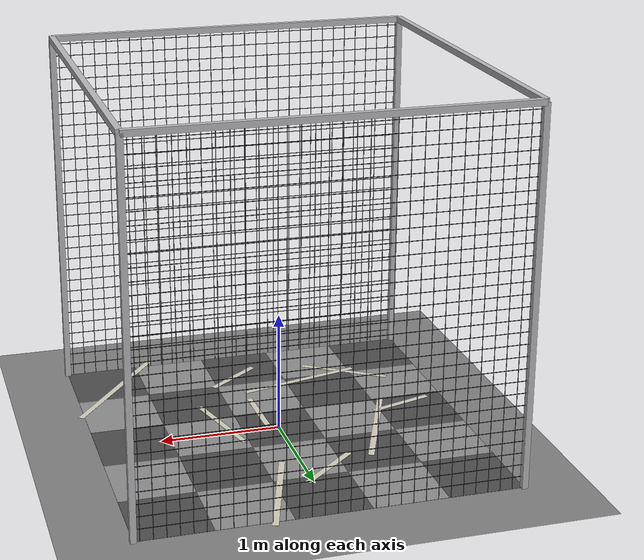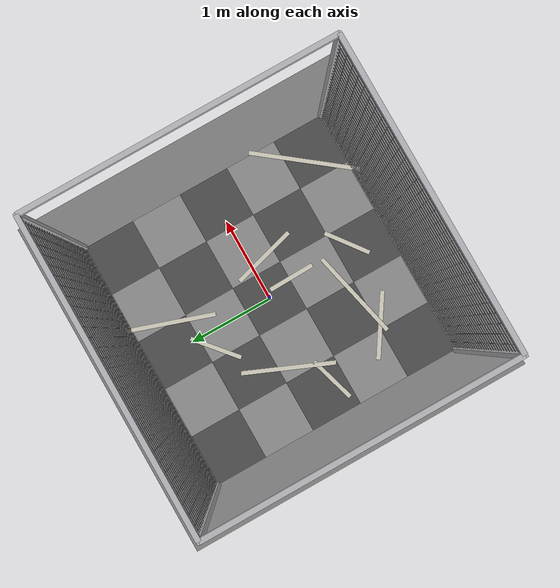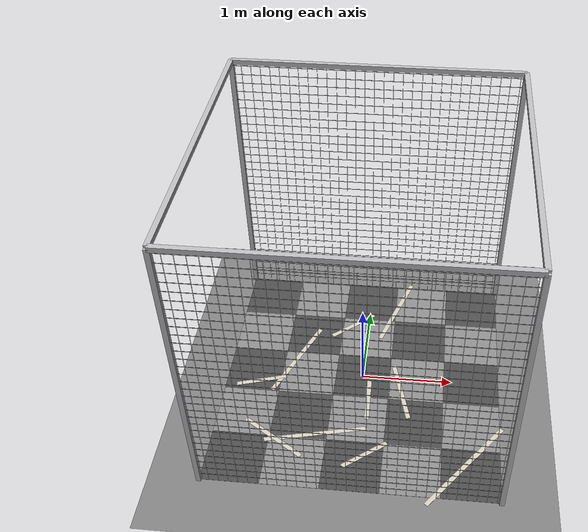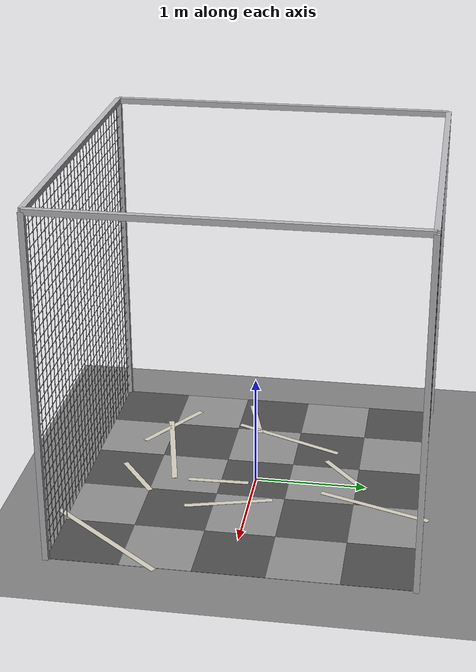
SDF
<sdf version="1.9">
 <world name="ecps295_cage10_monitor">
  <model name="ground_plane">
   <static>true</static>
   <link name="link">
    <collision name="collision">
     <geometry><plane><normal>0 0 1</normal><size>50 50</size></plane></geometry>
    </collision>
    <visual name="visual">
     <geometry><plane><normal>0 0 1</normal><size>50 50</size></plane></geometry>
     <material><ambient>0.5 0.5 0.5 1</ambient><diffuse>0.5 0.5 0.5 1</diffuse></material>
    </visual>
   </link>
  </model>
  <model name="eva_mat">
   <static>true</static>
   <link name="link">
    <visual name="t0_0">
     <pose>-1.220 -1.220 0.001 0 0 0</pose>
     <geometry><box><size>0.61 0.61 0.002</size></box></geometry>
     <material><ambient>0.3 0.3 0.3 1</ambient><diffuse>0.3 0.3 0.3 1</diffuse></material>
    </visual>
    <visual name="t0_1">
     <pose>-1.220 -0.610 0.001 0 0 0</pose>
     <geometry><box><size>0.61 0.61 0.002</size></box></geometry>
     <material><ambient>0.55 0.55 0.55 1</ambient><diffuse>0.55 0.55 0.55 1</diffuse></material>
    </visual>
    <visual name="t0_2">
     <pose>-1.220 0.000 0.001 0 0 0</pose>
     <geometry><box><size>0.61 0.61 0.002</size></box></geometry>
     <material><ambient>0.3 0.3 0.3 1</ambient><diffuse>0.3 0.3 0.3 1</diffuse></material>
    </visual>
    <visual name="t0_3">
     <pose>-1.220 0.610 0.001 0 0 0</pose>
     <geometry><box><size>0.61 0.61 0.002</size></box></geometry>
     <material><ambient>0.55 0.55 0.55 1</ambient><diffuse>0.55 0.55 0.55 1</diffuse></material>
    </visual>
    <visual name="t0_4">
     <pose>-1.220 1.220 0.001 0 0 0</pose>
     <geometry><box><size>0.61 0.61 0.002</size></box></geometry>
     <material><ambient>0.3 0.3 0.3 1</ambient><diffuse>0.3 0.3 0.3 1</diffuse></material>
    </visual>
    <visual name="t1_0">
     <pose>-0.610 -1.220 0.001 0 0 0</pose>
     <geometry><box><size>0.61 0.61 0.002</size></box></geometry>
     <material><ambient>0.55 0.55 0.55 1</ambient><diffuse>0.55 0.55 0.55 1</diffuse></material>
    </visual>
    <visual name="t1_1">
     <pose>-0.610 -0.610 0.001 0 0 0</pose>
     <geometry><box><size>0.61 0.61 0.002</size></box></geometry>
     <material><ambient>0.3 0.3 0.3 1</ambient><diffuse>0.3 0.3 0.3 1</diffuse></material>
    </visual>
    <visual name="t1_2">
     <pose>-0.610 0.000 0.001 0 0 0</pose>
     <geometry><box><size>0.61 0.61 0.002</size></box></geometry>
     <material><ambient>0.55 0.55 0.55 1</ambient><diffuse>0.55 0.55 0.55 1</diffuse></material>
    </visual>
    <visual name="t1_3">
     <pose>-0.610 0.610 0.001 0 0 0</pose>
     <geometry><box><size>0.61 0.61 0.002</size></box></geometry>
     <material><ambient>0.3 0.3 0.3 1</ambient><diffuse>0.3 0.3 0.3 1</diffuse></material>
    </visual>
    <visual name="t1_4">
     <pose>-0.610 1.220 0.001 0 0 0</pose>
     <geometry><box><size>0.61 0.61 0.002</size></box></geometry>
     <material><ambient>0.55 0.55 0.55 1</ambient><diffuse>0.55 0.55 0.55 1</diffuse></material>
    </visual>
    <visual name="t2_0">
     <pose>0.000 -1.220 0.001 0 0 0</pose>
     <geometry><box><size>0.61 0.61 0.002</size></box></geometry>
     <material><ambient>0.3 0.3 0.3 1</ambient><diffuse>0.3 0.3 0.3 1</diffuse></material>
    </visual>
    <visual name="t2_1">
     <pose>0.000 -0.610 0.001 0 0 0</pose>
     <geometry><box><size>0.61 0.61 0.002</size></box></geometry>
     <material><ambient>0.55 0.55 0.55 1</ambient><diffuse>0.55 0.55 0.55 1</diffuse></material>
    </visual>
    <visual name="t2_2">
     <pose>0.000 0.000 0.001 0 0 0</pose>
     <geometry><box><size>0.61 0.61 0.002</size></box></geometry>
     <material><ambient>0.3 0.3 0.3 1</ambient><diffuse>0.3 0.3 0.3 1</diffuse></material>
    </visual>
    <visual name="t2_3">
     <pose>0.000 0.610 0.001 0 0 0</pose>
     <geometry><box><size>0.61 0.61 0.002</size></box></geometry>
     <material><ambient>0.55 0.55 0.55 1</ambient><diffuse>0.55 0.55 0.55 1</diffuse></material>
    </visual>
    <visual name="t2_4">
     <pose>0.000 1.220 0.001 0 0 0</pose>
     <geometry><box><size>0.61 0.61 0.002</size></box></geometry>
     <material><ambient>0.3 0.3 0.3 1</ambient><diffuse>0.3 0.3 0.3 1</diffuse></material>
    </visual>
    <visual name="t3_0">
     <pose>0.610 -1.220 0.001 0 0 0</pose>
     <geometry><box><size>0.61 0.61 0.002</size></box></geometry>
     <material><ambient>0.55 0.55 0.55 1</ambient><diffuse>0.55 0.55 0.55 1</diffuse></material>
    </visual>
    <visual name="t3_1">
     <pose>0.610 -0.610 0.001 0 0 0</pose>
     <geometry><box><size>0.61 0.61 0.002</size></box></geometry>
     <material><ambient>0.3 0.3 0.3 1</ambient><diffuse>0.3 0.3 0.3 1</diffuse></material>
    </visual>
    <visual name="t3_2">
     <pose>0.610 0.000 0.001 0 0 0</pose>
     <geometry><box><size>0.61 0.61 0.002</size></box></geometry>
     <material><ambient>0.55 0.55 0.55 1</ambient><diffuse>0.55 0.55 0.55 1</diffuse></material>
    </visual>
    <visual name="t3_3">
     <pose>0.610 0.610 0.001 0 0 0</pose>
     <geometry><box><size>0.61 0.61 0.002</size></box></geometry>
     <material><ambient>0.3 0.3 0.3 1</ambient><diffuse>0.3 0.3 0.3 1</diffuse></material>
    </visual>
    <visual name="t3_4">
     <pose>0.610 1.220 0.001 0 0 0</pose>
     <geometry><box><size>0.61 0.61 0.002</size></box></geometry>
     <material><ambient>0.55 0.55 0.55 1</ambient><diffuse>0.55 0.55 0.55 1</diffuse></material>
    </visual>
    <visual name="t4_0">
     <pose>1.220 -1.220 0.001 0 0 0</pose>
     <geometry><box><size>0.61 0.61 0.002</size></box></geometry>
     <material><ambient>0.3 0.3 0.3 1</ambient><diffuse>0.3 0.3 0.3 1</diffuse></material>
    </visual>
    <visual name="t4_1">
     <pose>1.220 -0.610 0.001 0 0 0</pose>
     <geometry><box><size>0.61 0.61 0.002</size></box></geometry>
     <material><ambient>0.55 0.55 0.55 1</ambient><diffuse>0.55 0.55 0.55 1</diffuse></material>
    </visual>
    <visual name="t4_2">
     <pose>1.220 0.000 0.001 0 0 0</pose>
     <geometry><box><size>0.61 0.61 0.002</size></box></geometry>
     <material><ambient>0.3 0.3 0.3 1</ambient><diffuse>0.3 0.3 0.3 1</diffuse></material>
    </visual>
    <visual name="t4_3">
     <pose>1.220 0.610 0.001 0 0 0</pose>
     <geometry><box><size>0.61 0.61 0.002</size></box></geometry>
     <material><ambient>0.55 0.55 0.55 1</ambient><diffuse>0.55 0.55 0.55 1</diffuse></material>
    </visual>
    <visual name="t4_4">
     <pose>1.220 1.220 0.001 0 0 0</pose>
     <geometry><box><size>0.61 0.61 0.002</size></box></geometry>
     <material><ambient>0.3 0.3 0.3 1</ambient><diffuse>0.3 0.3 0.3 1</diffuse></material>
    </visual>
   </link>
  </model>
  <model name="floor_tape">
   <static>true</static>
   <link name="link">
    <visual name="tape0">
     <pose>-0.432 -0.855 0.003 0 0 0.2276</pose>
     <geometry><box><size>1.086 0.050 0.001</size></box></geometry>
     <material><ambient>0.82 0.80 0.74 1</ambient><diffuse>0.82 0.80 0.74 1</diffuse></material>
    </visual>
    <visual name="tape1">
     <pose>0.088 -0.329 0.003 0 0 1.5942</pose>
     <geometry><box><size>0.552 0.050 0.001</size></box></geometry>
     <material><ambient>0.82 0.80 0.74 1</ambient><diffuse>0.82 0.80 0.74 1</diffuse></material>
    </visual>
    <visual name="tape2">
     <pose>-1.133 -0.163 0.003 0 0 0.2850</pose>
     <geometry><box><size>0.563 0.050 0.001</size></box></geometry>
     <material><ambient>0.82 0.80 0.74 1</ambient><diffuse>0.82 0.80 0.74 1</diffuse></material>
    </visual>
    <visual name="tape3">
     <pose>-0.185 0.801 0.003 0 0 0.7013</pose>
     <geometry><box><size>0.611 0.050 0.001</size></box></geometry>
     <material><ambient>0.82 0.80 0.74 1</ambient><diffuse>0.82 0.80 0.74 1</diffuse></material>
    </visual>
    <visual name="tape4">
     <pose>0.312 1.097 0.003 0 0 1.2462</pose>
     <geometry><box><size>1.019 0.050 0.001</size></box></geometry>
     <material><ambient>0.82 0.80 0.74 1</ambient><diffuse>0.82 0.80 0.74 1</diffuse></material>
    </visual>
    <visual name="tape5">
     <pose>1.167 -1.111 0.003 0 0 0.9098</pose>
     <geometry><box><size>1.273 0.050 0.001</size></box></geometry>
     <material><ambient>0.82 0.80 0.74 1</ambient><diffuse>0.82 0.80 0.74 1</diffuse></material>
    </visual>
    <visual name="tape6">
     <pose>-0.872 -0.936 0.003 0 0 2.5639</pose>
     <geometry><box><size>0.778 0.050 0.001</size></box></geometry>
     <material><ambient>0.82 0.80 0.74 1</ambient><diffuse>0.82 0.80 0.74 1</diffuse></material>
    </visual>
    <visual name="tape7">
     <pose>-0.782 0.200 0.003 0 0 1.1699</pose>
     <geometry><box><size>1.075 0.050 0.001</size></box></geometry>
     <material><ambient>0.82 0.80 0.74 1</ambient><diffuse>0.82 0.80 0.74 1</diffuse></material>
    </visual>
    <visual name="tape8">
     <pose>0.117 -1.071 0.003 0 0 0.6470</pose>
     <geometry><box><size>0.554 0.050 0.001</size></box></geometry>
     <material><ambient>0.82 0.80 0.74 1</ambient><diffuse>0.82 0.80 0.74 1</diffuse></material>
    </visual>
    <visual name="tape9">
     <pose>0.442 -0.177 0.003 0 0 1.8396</pose>
     <geometry><box><size>0.783 0.050 0.001</size></box></geometry>
     <material><ambient>0.82 0.80 0.74 1</ambient><diffuse>0.82 0.80 0.74 1</diffuse></material>
    </visual>
   </link>
  </model>
  <model name="cage_frame">
   <static>true</static>
   <link name="link">
    <visual name="post0_0">
     <pose>-1.525 -1.525 1.525 0 0 0.0000</pose>
     <geometry><box><size>0.050 0.050 3.050</size></box></geometry>
     <material><ambient>0.72 0.72 0.74 1</ambient><diffuse>0.72 0.72 0.74 1</diffuse></material>
    </visual>
    <visual name="post0_1">
     <pose>-1.525 1.525 1.525 0 0 0.0000</pose>
     <geometry><box><size>0.050 0.050 3.050</size></box></geometry>
     <material><ambient>0.72 0.72 0.74 1</ambient><diffuse>0.72 0.72 0.74 1</diffuse></material>
    </visual>
    <visual name="post1_0">
     <pose>1.525 -1.525 1.525 0 0 0.0000</pose>
     <geometry><box><size>0.050 0.050 3.050</size></box></geometry>
     <material><ambient>0.72 0.72 0.74 1</ambient><diffuse>0.72 0.72 0.74 1</diffuse></material>
    </visual>
    <visual name="post1_1">
     <pose>1.525 1.525 1.525 0 0 0.0000</pose>
     <geometry><box><size>0.050 0.050 3.050</size></box></geometry>
     <material><ambient>0.72 0.72 0.74 1</ambient><diffuse>0.72 0.72 0.74 1</diffuse></material>
    </visual>
    <visual name="railx0">
     <pose>0.000 -1.525 3.050 0 0 0.0000</pose>
     <geometry><box><size>3.050 0.050 0.050</size></box></geometry>
     <material><ambient>0.72 0.72 0.74 1</ambient><diffuse>0.72 0.72 0.74 1</diffuse></material>
    </visual>
    <visual name="raily0">
     <pose>-1.525 0.000 3.050 0 0 0.0000</pose>
     <geometry><box><size>0.050 3.050 0.050</size></box></geometry>
     <material><ambient>0.72 0.72 0.74 1</ambient><diffuse>0.72 0.72 0.74 1</diffuse></material>
    </visual>
    <visual name="railx1">
     <pose>0.000 1.525 3.050 0 0 0.0000</pose>
     <geometry><box><size>3.050 0.050 0.050</size></box></geometry>
     <material><ambient>0.72 0.72 0.74 1</ambient><diffuse>0.72 0.72 0.74 1</diffuse></material>
    </visual>
    <visual name="raily1">
     <pose>1.525 0.000 3.050 0 0 0.0000</pose>
     <geometry><box><size>0.050 3.050 0.050</size></box></geometry>
     <material><ambient>0.72 0.72 0.74 1</ambient><diffuse>0.72 0.72 0.74 1</diffuse></material>
    </visual>
   </link>
  </model>
  <model name="net_n">
   <static>true</static>
   <link name="link">
    <collision name="c">
     <pose>0.000 1.525 1.525 0 0 0</pose>
     <geometry><box><size>3.050 0.020 3.050</size></box></geometry>
    </collision>
    <visual name="v0">
     <pose>-1.525 1.525 1.525 0 0 0.0000</pose>
     <geometry><box><size>0.004 0.004 3.050</size></box></geometry>
     <material><ambient>0.16 0.16 0.16 1</ambient><diffuse>0.16 0.16 0.16 1</diffuse></material>
    </visual>
    <visual name="v1">
     <pose>-1.425 1.525 1.525 0 0 0.0000</pose>
     <geometry><box><size>0.004 0.004 3.050</size></box></geometry>
     <material><ambient>0.16 0.16 0.16 1</ambient><diffuse>0.16 0.16 0.16 1</diffuse></material>
    </visual>
    <visual name="v2">
     <pose>-1.325 1.525 1.525 0 0 0.0000</pose>
     <geometry><box><size>0.004 0.004 3.050</size></box></geometry>
     <material><ambient>0.16 0.16 0.16 1</ambient><diffuse>0.16 0.16 0.16 1</diffuse></material>
    </visual>
    <visual name="v3">
     <pose>-1.225 1.525 1.525 0 0 0.0000</pose>
     <geometry><box><size>0.004 0.004 3.050</size></box></geometry>
     <material><ambient>0.16 0.16 0.16 1</ambient><diffuse>0.16 0.16 0.16 1</diffuse></material>
    </visual>
    <visual name="v4">
     <pose>-1.125 1.525 1.525 0 0 0.0000</pose>
     <geometry><box><size>0.004 0.004 3.050</size></box></geometry>
     <material><ambient>0.16 0.16 0.16 1</ambient><diffuse>0.16 0.16 0.16 1</diffuse></material>
    </visual>
    <visual name="v5">
     <pose>-1.025 1.525 1.525 0 0 0.0000</pose>
     <geometry><box><size>0.004 0.004 3.050</size></box></geometry>
     <material><ambient>0.16 0.16 0.16 1</ambient><diffuse>0.16 0.16 0.16 1</diffuse></material>
    </visual>
    <visual name="v6">
     <pose>-0.925 1.525 1.525 0 0 0.0000</pose>
     <geometry><box><size>0.004 0.004 3.050</size></box></geometry>
     <material><ambient>0.16 0.16 0.16 1</ambient><diffuse>0.16 0.16 0.16 1</diffuse></material>
    </visual>
    <visual name="v7">
     <pose>-0.825 1.525 1.525 0 0 0.0000</pose>
     <geometry><box><size>0.004 0.004 3.050</size></box></geometry>
     <material><ambient>0.16 0.16 0.16 1</ambient><diffuse>0.16 0.16 0.16 1</diffuse></material>
    </visual>
    <visual name="v8">
     <pose>-0.725 1.525 1.525 0 0 0.0000</pose>
     <geometry><box><size>0.004 0.004 3.050</size></box></geometry>
     <material><ambient>0.16 0.16 0.16 1</ambient><diffuse>0.16 0.16 0.16 1</diffuse></material>
    </visual>
    <visual name="v9">
     <pose>-0.625 1.525 1.525 0 0 0.0000</pose>
     <geometry><box><size>0.004 0.004 3.050</size></box></geometry>
     <material><ambient>0.16 0.16 0.16 1</ambient><diffuse>0.16 0.16 0.16 1</diffuse></material>
    </visual>
    <visual name="v10">
     <pose>-0.525 1.525 1.525 0 0 0.0000</pose>
     <geometry><box><size>0.004 0.004 3.050</size></box></geometry>
     <material><ambient>0.16 0.16 0.16 1</ambient><diffuse>0.16 0.16 0.16 1</diffuse></material>
    </visual>
    <visual name="v11">
     <pose>-0.425 1.525 1.525 0 0 0.0000</pose>
     <geometry><box><size>0.004 0.004 3.050</size></box></geometry>
     <material><ambient>0.16 0.16 0.16 1</ambient><diffuse>0.16 0.16 0.16 1</diffuse></material>
    </visual>
    <visual name="v12">
     <pose>-0.325 1.525 1.525 0 0 0.0000</pose>
     <geometry><box><size>0.004 0.004 3.050</size></box></geometry>
     <material><ambient>0.16 0.16 0.16 1</ambient><diffuse>0.16 0.16 0.16 1</diffuse></material>
    </visual>
    <visual name="v13">
     <pose>-0.225 1.525 1.525 0 0 0.0000</pose>
     <geometry><box><size>0.004 0.004 3.050</size></box></geometry>
     <material><ambient>0.16 0.16 0.16 1</ambient><diffuse>0.16 0.16 0.16 1</diffuse></material>
    </visual>
    <visual name="v14">
     <pose>-0.125 1.525 1.525 0 0 0.0000</pose>
     <geometry><box><size>0.004 0.004 3.050</size></box></geometry>
     <material><ambient>0.16 0.16 0.16 1</ambient><diffuse>0.16 0.16 0.16 1</diffuse></material>
    </visual>
    <visual name="v15">
     <pose>-0.025 1.525 1.525 0 0 0.0000</pose>
     <geometry><box><size>0.004 0.004 3.050</size></box></geometry>
     <material><ambient>0.16 0.16 0.16 1</ambient><diffuse>0.16 0.16 0.16 1</diffuse></material>
    </visual>
    <visual name="v16">
     <pose>0.075 1.525 1.525 0 0 0.0000</pose>
     <geometry><box><size>0.004 0.004 3.050</size></box></geometry>
     <material><ambient>0.16 0.16 0.16 1</ambient><diffuse>0.16 0.16 0.16 1</diffuse></material>
    </visual>
    <visual name="v17">
     <pose>0.175 1.525 1.525 0 0 0.0000</pose>
     <geometry><box><size>0.004 0.004 3.050</size></box></geometry>
     <material><ambient>0.16 0.16 0.16 1</ambient><diffuse>0.16 0.16 0.16 1</diffuse></material>
    </visual>
    <visual name="v18">
     <pose>0.275 1.525 1.525 0 0 0.0000</pose>
     <geometry><box><size>0.004 0.004 3.050</size></box></geometry>
     <material><ambient>0.16 0.16 0.16 1</ambient><diffuse>0.16 0.16 0.16 1</diffuse></material>
    </visual>
    <visual name="v19">
     <pose>0.375 1.525 1.525 0 0 0.0000</pose>
     <geometry><box><size>0.004 0.004 3.050</size></box></geometry>
     <material><ambient>0.16 0.16 0.16 1</ambient><diffuse>0.16 0.16 0.16 1</diffuse></material>
    </visual>
    <visual name="v20">
     <pose>0.475 1.525 1.525 0 0 0.0000</pose>
     <geometry><box><size>0.004 0.004 3.050</size></box></geometry>
     <material><ambient>0.16 0.16 0.16 1</ambient><diffuse>0.16 0.16 0.16 1</diffuse></material>
    </visual>
    <visual name="v21">
     <pose>0.575 1.525 1.525 0 0 0.0000</pose>
     <geometry><box><size>0.004 0.004 3.050</size></box></geometry>
     <material><ambient>0.16 0.16 0.16 1</ambient><diffuse>0.16 0.16 0.16 1</diffuse></material>
    </visual>
    <visual name="v22">
     <pose>0.675 1.525 1.525 0 0 0.0000</pose>
     <geometry><box><size>0.004 0.004 3.050</size></box></geometry>
     <material><ambient>0.16 0.16 0.16 1</ambient><diffuse>0.16 0.16 0.16 1</diffuse></material>
    </visual>
    <visual name="v23">
     <pose>0.775 1.525 1.525 0 0 0.0000</pose>
     <geometry><box><size>0.004 0.004 3.050</size></box></geometry>
     <material><ambient>0.16 0.16 0.16 1</ambient><diffuse>0.16 0.16 0.16 1</diffuse></material>
    </visual>
    <visual name="v24">
     <pose>0.875 1.525 1.525 0 0 0.0000</pose>
     <geometry><box><size>0.004 0.004 3.050</size></box></geometry>
     <material><ambient>0.16 0.16 0.16 1</ambient><diffuse>0.16 0.16 0.16 1</diffuse></material>
    </visual>
    <visual name="v25">
     <pose>0.975 1.525 1.525 0 0 0.0000</pose>
     <geometry><box><size>0.004 0.004 3.050</size></box></geometry>
     <material><ambient>0.16 0.16 0.16 1</ambient><diffuse>0.16 0.16 0.16 1</diffuse></material>
    </visual>
    <visual name="v26">
     <pose>1.075 1.525 1.525 0 0 0.0000</pose>
     <geometry><box><size>0.004 0.004 3.050</size></box></geometry>
     <material><ambient>0.16 0.16 0.16 1</ambient><diffuse>0.16 0.16 0.16 1</diffuse></material>
    </visual>
    <visual name="v27">
     <pose>1.175 1.525 1.525 0 0 0.0000</pose>
     <geometry><box><size>0.004 0.004 3.050</size></box></geometry>
     <material><ambient>0.16 0.16 0.16 1</ambient><diffuse>0.16 0.16 0.16 1</diffuse></material>
    </visual>
    <visual name="v28">
     <pose>1.275 1.525 1.525 0 0 0.0000</pose>
     <geometry><box><size>0.004 0.004 3.050</size></box></geometry>
     <material><ambient>0.16 0.16 0.16 1</ambient><diffuse>0.16 0.16 0.16 1</diffuse></material>
    </visual>
    <visual name="v29">
     <pose>1.375 1.525 1.525 0 0 0.0000</pose>
     <geometry><box><size>0.004 0.004 3.050</size></box></geometry>
     <material><ambient>0.16 0.16 0.16 1</ambient><diffuse>0.16 0.16 0.16 1</diffuse></material>
    </visual>
    <visual name="v30">
     <pose>1.475 1.525 1.525 0 0 0.0000</pose>
     <geometry><box><size>0.004 0.004 3.050</size></box></geometry>
     <material><ambient>0.16 0.16 0.16 1</ambient><diffuse>0.16 0.16 0.16 1</diffuse></material>
    </visual>
    <visual name="h1">
     <pose>0.000 1.525 0.100 0 0 0.0000</pose>
     <geometry><box><size>3.050 0.004 0.004</size></box></geometry>
     <material><ambient>0.16 0.16 0.16 1</ambient><diffuse>0.16 0.16 0.16 1</diffuse></material>
    </visual>
    <visual name="h2">
     <pose>0.000 1.525 0.200 0 0 0.0000</pose>
     <geometry><box><size>3.050 0.004 0.004</size></box></geometry>
     <material><ambient>0.16 0.16 0.16 1</ambient><diffuse>0.16 0.16 0.16 1</diffuse></material>
    </visual>
    <visual name="h3">
     <pose>0.000 1.525 0.300 0 0 0.0000</pose>
     <geometry><box><size>3.050 0.004 0.004</size></box></geometry>
     <material><ambient>0.16 0.16 0.16 1</ambient><diffuse>0.16 0.16 0.16 1</diffuse></material>
    </visual>
    <visual name="h4">
     <pose>0.000 1.525 0.400 0 0 0.0000</pose>
     <geometry><box><size>3.050 0.004 0.004</size></box></geometry>
     <material><ambient>0.16 0.16 0.16 1</ambient><diffuse>0.16 0.16 0.16 1</diffuse></material>
    </visual>
    <visual name="h5">
     <pose>0.000 1.525 0.500 0 0 0.0000</pose>
     <geometry><box><size>3.050 0.004 0.004</size></box></geometry>
     <material><ambient>0.16 0.16 0.16 1</ambient><diffuse>0.16 0.16 0.16 1</diffuse></material>
    </visual>
    <visual name="h6">
     <pose>0.000 1.525 0.600 0 0 0.0000</pose>
     <geometry><box><size>3.050 0.004 0.004</size></box></geometry>
     <material><ambient>0.16 0.16 0.16 1</ambient><diffuse>0.16 0.16 0.16 1</diffuse></material>
    </visual>
    <visual name="h7">
     <pose>0.000 1.525 0.700 0 0 0.0000</pose>
     <geometry><box><size>3.050 0.004 0.004</size></box></geometry>
     <material><ambient>0.16 0.16 0.16 1</ambient><diffuse>0.16 0.16 0.16 1</diffuse></material>
    </visual>
    <visual name="h8">
     <pose>0.000 1.525 0.800 0 0 0.0000</pose>
     <geometry><box><size>3.050 0.004 0.004</size></box></geometry>
     <material><ambient>0.16 0.16 0.16 1</ambient><diffuse>0.16 0.16 0.16 1</diffuse></material>
    </visual>
    <visual name="h9">
     <pose>0.000 1.525 0.900 0 0 0.0000</pose>
     <geometry><box><size>3.050 0.004 0.004</size></box></geometry>
     <material><ambient>0.16 0.16 0.16 1</ambient><diffuse>0.16 0.16 0.16 1</diffuse></material>
    </visual>
    <visual name="h10">
     <pose>0.000 1.525 1.000 0 0 0.0000</pose>
     <geometry><box><size>3.050 0.004 0.004</size></box></geometry>
     <material><ambient>0.16 0.16 0.16 1</ambient><diffuse>0.16 0.16 0.16 1</diffuse></material>
    </visual>
    <visual name="h11">
     <pose>0.000 1.525 1.100 0 0 0.0000</pose>
     <geometry><box><size>3.050 0.004 0.004</size></box></geometry>
     <material><ambient>0.16 0.16 0.16 1</ambient><diffuse>0.16 0.16 0.16 1</diffuse></material>
    </visual>
    <visual name="h12">
     <pose>0.000 1.525 1.200 0 0 0.0000</pose>
     <geometry><box><size>3.050 0.004 0.004</size></box></geometry>
     <material><ambient>0.16 0.16 0.16 1</ambient><diffuse>0.16 0.16 0.16 1</diffuse></material>
    </visual>
    <visual name="h13">
     <pose>0.000 1.525 1.300 0 0 0.0000</pose>
     <geometry><box><size>3.050 0.004 0.004</size></box></geometry>
     <material><ambient>0.16 0.16 0.16 1</ambient><diffuse>0.16 0.16 0.16 1</diffuse></material>
    </visual>
    <visual name="h14">
     <pose>0.000 1.525 1.400 0 0 0.0000</pose>
     <geometry><box><size>3.050 0.004 0.004</size></box></geometry>
     <material><ambient>0.16 0.16 0.16 1</ambient><diffuse>0.16 0.16 0.16 1</diffuse></material>
    </visual>
    <visual name="h15">
     <pose>0.000 1.525 1.500 0 0 0.0000</pose>
     <geometry><box><size>3.050 0.004 0.004</size></box></geometry>
     <material><ambient>0.16 0.16 0.16 1</ambient><diffuse>0.16 0.16 0.16 1</diffuse></material>
    </visual>
    <visual name="h16">
     <pose>0.000 1.525 1.600 0 0 0.0000</pose>
     <geometry><box><size>3.050 0.004 0.004</size></box></geometry>
     <material><ambient>0.16 0.16 0.16 1</ambient><diffuse>0.16 0.16 0.16 1</diffuse></material>
    </visual>
    <visual name="h17">
     <pose>0.000 1.525 1.700 0 0 0.0000</pose>
     <geometry><box><size>3.050 0.004 0.004</size></box></geometry>
     <material><ambient>0.16 0.16 0.16 1</ambient><diffuse>0.16 0.16 0.16 1</diffuse></material>
    </visual>
    <visual name="h18">
     <pose>0.000 1.525 1.800 0 0 0.0000</pose>
     <geometry><box><size>3.050 0.004 0.004</size></box></geometry>
     <material><ambient>0.16 0.16 0.16 1</ambient><diffuse>0.16 0.16 0.16 1</diffuse></material>
    </visual>
    <visual name="h19">
     <pose>0.000 1.525 1.900 0 0 0.0000</pose>
     <geometry><box><size>3.050 0.004 0.004</size></box></geometry>
     <material><ambient>0.16 0.16 0.16 1</ambient><diffuse>0.16 0.16 0.16 1</diffuse></material>
    </visual>
    <visual name="h20">
     <pose>0.000 1.525 2.000 0 0 0.0000</pose>
     <geometry><box><size>3.050 0.004 0.004</size></box></geometry>
     <material><ambient>0.16 0.16 0.16 1</ambient><diffuse>0.16 0.16 0.16 1</diffuse></material>
    </visual>
    <visual name="h21">
     <pose>0.000 1.525 2.100 0 0 0.0000</pose>
     <geometry><box><size>3.050 0.004 0.004</size></box></geometry>
     <material><ambient>0.16 0.16 0.16 1</ambient><diffuse>0.16 0.16 0.16 1</diffuse></material>
    </visual>
    <visual name="h22">
     <pose>0.000 1.525 2.200 0 0 0.0000</pose>
     <geometry><box><size>3.050 0.004 0.004</size></box></geometry>
     <material><ambient>0.16 0.16 0.16 1</ambient><diffuse>0.16 0.16 0.16 1</diffuse></material>
    </visual>
    <visual name="h23">
     <pose>0.000 1.525 2.300 0 0 0.0000</pose>
     <geometry><box><size>3.050 0.004 0.004</size></box></geometry>
     <material><ambient>0.16 0.16 0.16 1</ambient><diffuse>0.16 0.16 0.16 1</diffuse></material>
    </visual>
    <visual name="h24">
     <pose>0.000 1.525 2.400 0 0 0.0000</pose>
     <geometry><box><size>3.050 0.004 0.004</size></box></geometry>
     <material><ambient>0.16 0.16 0.16 1</ambient><diffuse>0.16 0.16 0.16 1</diffuse></material>
    </visual>
    <visual name="h25">
     <pose>0.000 1.525 2.500 0 0 0.0000</pose>
     <geometry><box><size>3.050 0.004 0.004</size></box></geometry>
     <material><ambient>0.16 0.16 0.16 1</ambient><diffuse>0.16 0.16 0.16 1</diffuse></material>
    </visual>
    <visual name="h26">
     <pose>0.000 1.525 2.600 0 0 0.0000</pose>
     <geometry><box><size>3.050 0.004 0.004</size></box></geometry>
     <material><ambient>0.16 0.16 0.16 1</ambient><diffuse>0.16 0.16 0.16 1</diffuse></material>
    </visual>
    <visual name="h27">
     <pose>0.000 1.525 2.700 0 0 0.0000</pose>
     <geometry><box><size>3.050 0.004 0.004</size></box></geometry>
     <material><ambient>0.16 0.16 0.16 1</ambient><diffuse>0.16 0.16 0.16 1</diffuse></material>
    </visual>
    <visual name="h28">
     <pose>0.000 1.525 2.800 0 0 0.0000</pose>
     <geometry><box><size>3.050 0.004 0.004</size></box></geometry>
     <material><ambient>0.16 0.16 0.16 1</ambient><diffuse>0.16 0.16 0.16 1</diffuse></material>
    </visual>
    <visual name="h29">
     <pose>0.000 1.525 2.900 0 0 0.0000</pose>
     <geometry><box><size>3.050 0.004 0.004</size></box></geometry>
     <material><ambient>0.16 0.16 0.16 1</ambient><diffuse>0.16 0.16 0.16 1</diffuse></material>
    </visual>
    <visual name="h30">
     <pose>0.000 1.525 3.000 0 0 0.0000</pose>
     <geometry><box><size>3.050 0.004 0.004</size></box></geometry>
     <material><ambient>0.16 0.16 0.16 1</ambient><diffuse>0.16 0.16 0.16 1</diffuse></material>
    </visual>
   </link>
  </model>
  <model name="net_s">
   <static>true</static>
   <link name="link">
    <collision name="c">
     <pose>0.000 -1.525 1.525 0 0 0</pose>
     <geometry><box><size>3.050 0.020 3.050</size></box></geometry>
    </collision>
    <visual name="v0">
     <pose>-1.525 -1.525 1.525 0 0 0.0000</pose>
     <geometry><box><size>0.004 0.004 3.050</size></box></geometry>
     <material><ambient>0.16 0.16 0.16 1</ambient><diffuse>0.16 0.16 0.16 1</diffuse></material>
    </visual>
    <visual name="v1">
     <pose>-1.425 -1.525 1.525 0 0 0.0000</pose>
     <geometry><box><size>0.004 0.004 3.050</size></box></geometry>
     <material><ambient>0.16 0.16 0.16 1</ambient><diffuse>0.16 0.16 0.16 1</diffuse></material>
    </visual>
    <visual name="v2">
     <pose>-1.325 -1.525 1.525 0 0 0.0000</pose>
     <geometry><box><size>0.004 0.004 3.050</size></box></geometry>
     <material><ambient>0.16 0.16 0.16 1</ambient><diffuse>0.16 0.16 0.16 1</diffuse></material>
    </visual>
    <visual name="v3">
     <pose>-1.225 -1.525 1.525 0 0 0.0000</pose>
     <geometry><box><size>0.004 0.004 3.050</size></box></geometry>
     <material><ambient>0.16 0.16 0.16 1</ambient><diffuse>0.16 0.16 0.16 1</diffuse></material>
    </visual>
    <visual name="v4">
     <pose>-1.125 -1.525 1.525 0 0 0.0000</pose>
     <geometry><box><size>0.004 0.004 3.050</size></box></geometry>
     <material><ambient>0.16 0.16 0.16 1</ambient><diffuse>0.16 0.16 0.16 1</diffuse></material>
    </visual>
    <visual name="v5">
     <pose>-1.025 -1.525 1.525 0 0 0.0000</pose>
     <geometry><box><size>0.004 0.004 3.050</size></box></geometry>
     <material><ambient>0.16 0.16 0.16 1</ambient><diffuse>0.16 0.16 0.16 1</diffuse></material>
    </visual>
    <visual name="v6">
     <pose>-0.925 -1.525 1.525 0 0 0.0000</pose>
     <geometry><box><size>0.004 0.004 3.050</size></box></geometry>
     <material><ambient>0.16 0.16 0.16 1</ambient><diffuse>0.16 0.16 0.16 1</diffuse></material>
    </visual>
    <visual name="v7">
     <pose>-0.825 -1.525 1.525 0 0 0.0000</pose>
     <geometry><box><size>0.004 0.004 3.050</size></box></geometry>
     <material><ambient>0.16 0.16 0.16 1</ambient><diffuse>0.16 0.16 0.16 1</diffuse></material>
    </visual>
    <visual name="v8">
     <pose>-0.725 -1.525 1.525 0 0 0.0000</pose>
     <geometry><box><size>0.004 0.004 3.050</size></box></geometry>
     <material><ambient>0.16 0.16 0.16 1</ambient><diffuse>0.16 0.16 0.16 1</diffuse></material>
    </visual>
    <visual name="v9">
     <pose>-0.625 -1.525 1.525 0 0 0.0000</pose>
     <geometry><box><size>0.004 0.004 3.050</size></box></geometry>
     <material><ambient>0.16 0.16 0.16 1</ambient><diffuse>0.16 0.16 0.16 1</diffuse></material>
    </visual>
    <visual name="v10">
     <pose>-0.525 -1.525 1.525 0 0 0.0000</pose>
     <geometry><box><size>0.004 0.004 3.050</size></box></geometry>
     <material><ambient>0.16 0.16 0.16 1</ambient><diffuse>0.16 0.16 0.16 1</diffuse></material>
    </visual>
    <visual name="v11">
     <pose>-0.425 -1.525 1.525 0 0 0.0000</pose>
     <geometry><box><size>0.004 0.004 3.050</size></box></geometry>
     <material><ambient>0.16 0.16 0.16 1</ambient><diffuse>0.16 0.16 0.16 1</diffuse></material>
    </visual>
    <visual name="v12">
     <pose>-0.325 -1.525 1.525 0 0 0.0000</pose>
     <geometry><box><size>0.004 0.004 3.050</size></box></geometry>
     <material><ambient>0.16 0.16 0.16 1</ambient><diffuse>0.16 0.16 0.16 1</diffuse></material>
    </visual>
    <visual name="v13">
     <pose>-0.225 -1.525 1.525 0 0 0.0000</pose>
     <geometry><box><size>0.004 0.004 3.050</size></box></geometry>
     <material><ambient>0.16 0.16 0.16 1</ambient><diffuse>0.16 0.16 0.16 1</diffuse></material>
    </visual>
    <visual name="v14">
     <pose>-0.125 -1.525 1.525 0 0 0.0000</pose>
     <geometry><box><size>0.004 0.004 3.050</size></box></geometry>
     <material><ambient>0.16 0.16 0.16 1</ambient><diffuse>0.16 0.16 0.16 1</diffuse></material>
    </visual>
    <visual name="v15">
     <pose>-0.025 -1.525 1.525 0 0 0.0000</pose>
     <geometry><box><size>0.004 0.004 3.050</size></box></geometry>
     <material><ambient>0.16 0.16 0.16 1</ambient><diffuse>0.16 0.16 0.16 1</diffuse></material>
    </visual>
    <visual name="v16">
     <pose>0.075 -1.525 1.525 0 0 0.0000</pose>
     <geometry><box><size>0.004 0.004 3.050</size></box></geometry>
     <material><ambient>0.16 0.16 0.16 1</ambient><diffuse>0.16 0.16 0.16 1</diffuse></material>
    </visual>
    <visual name="v17">
     <pose>0.175 -1.525 1.525 0 0 0.0000</pose>
     <geometry><box><size>0.004 0.004 3.050</size></box></geometry>
     <material><ambient>0.16 0.16 0.16 1</ambient><diffuse>0.16 0.16 0.16 1</diffuse></material>
    </visual>
    <visual name="v18">
     <pose>0.275 -1.525 1.525 0 0 0.0000</pose>
     <geometry><box><size>0.004 0.004 3.050</size></box></geometry>
     <material><ambient>0.16 0.16 0.16 1</ambient><diffuse>0.16 0.16 0.16 1</diffuse></material>
    </visual>
    <visual name="v19">
     <pose>0.375 -1.525 1.525 0 0 0.0000</pose>
     <geometry><box><size>0.004 0.004 3.050</size></box></geometry>
     <material><ambient>0.16 0.16 0.16 1</ambient><diffuse>0.16 0.16 0.16 1</diffuse></material>
    </visual>
    <visual name="v20">
     <pose>0.475 -1.525 1.525 0 0 0.0000</pose>
     <geometry><box><size>0.004 0.004 3.050</size></box></geometry>
     <material><ambient>0.16 0.16 0.16 1</ambient><diffuse>0.16 0.16 0.16 1</diffuse></material>
    </visual>
    <visual name="v21">
     <pose>0.575 -1.525 1.525 0 0 0.0000</pose>
     <geometry><box><size>0.004 0.004 3.050</size></box></geometry>
     <material><ambient>0.16 0.16 0.16 1</ambient><diffuse>0.16 0.16 0.16 1</diffuse></material>
    </visual>
    <visual name="v22">
     <pose>0.675 -1.525 1.525 0 0 0.0000</pose>
     <geometry><box><size>0.004 0.004 3.050</size></box></geometry>
     <material><ambient>0.16 0.16 0.16 1</ambient><diffuse>0.16 0.16 0.16 1</diffuse></material>
    </visual>
    <visual name="v23">
     <pose>0.775 -1.525 1.525 0 0 0.0000</pose>
     <geometry><box><size>0.004 0.004 3.050</size></box></geometry>
     <material><ambient>0.16 0.16 0.16 1</ambient><diffuse>0.16 0.16 0.16 1</diffuse></material>
    </visual>
    <visual name="v24">
     <pose>0.875 -1.525 1.525 0 0 0.0000</pose>
     <geometry><box><size>0.004 0.004 3.050</size></box></geometry>
     <material><ambient>0.16 0.16 0.16 1</ambient><diffuse>0.16 0.16 0.16 1</diffuse></material>
    </visual>
    <visual name="v25">
     <pose>0.975 -1.525 1.525 0 0 0.0000</pose>
     <geometry><box><size>0.004 0.004 3.050</size></box></geometry>
     <material><ambient>0.16 0.16 0.16 1</ambient><diffuse>0.16 0.16 0.16 1</diffuse></material>
    </visual>
    <visual name="v26">
     <pose>1.075 -1.525 1.525 0 0 0.0000</pose>
     <geometry><box><size>0.004 0.004 3.050</size></box></geometry>
     <material><ambient>0.16 0.16 0.16 1</ambient><diffuse>0.16 0.16 0.16 1</diffuse></material>
    </visual>
    <visual name="v27">
     <pose>1.175 -1.525 1.525 0 0 0.0000</pose>
     <geometry><box><size>0.004 0.004 3.050</size></box></geometry>
     <material><ambient>0.16 0.16 0.16 1</ambient><diffuse>0.16 0.16 0.16 1</diffuse></material>
    </visual>
    <visual name="v28">
     <pose>1.275 -1.525 1.525 0 0 0.0000</pose>
     <geometry><box><size>0.004 0.004 3.050</size></box></geometry>
     <material><ambient>0.16 0.16 0.16 1</ambient><diffuse>0.16 0.16 0.16 1</diffuse></material>
    </visual>
    <visual name="v29">
     <pose>1.375 -1.525 1.525 0 0 0.0000</pose>
     <geometry><box><size>0.004 0.004 3.050</size></box></geometry>
     <material><ambient>0.16 0.16 0.16 1</ambient><diffuse>0.16 0.16 0.16 1</diffuse></material>
    </visual>
    <visual name="v30">
     <pose>1.475 -1.525 1.525 0 0 0.0000</pose>
     <geometry><box><size>0.004 0.004 3.050</size></box></geometry>
     <material><ambient>0.16 0.16 0.16 1</ambient><diffuse>0.16 0.16 0.16 1</diffuse></material>
    </visual>
    <visual name="h1">
     <pose>0.000 -1.525 0.100 0 0 0.0000</pose>
     <geometry><box><size>3.050 0.004 0.004</size></box></geometry>
     <material><ambient>0.16 0.16 0.16 1</ambient><diffuse>0.16 0.16 0.16 1</diffuse></material>
    </visual>
    <visual name="h2">
     <pose>0.000 -1.525 0.200 0 0 0.0000</pose>
     <geometry><box><size>3.050 0.004 0.004</size></box></geometry>
     <material><ambient>0.16 0.16 0.16 1</ambient><diffuse>0.16 0.16 0.16 1</diffuse></material>
    </visual>
    <visual name="h3">
     <pose>0.000 -1.525 0.300 0 0 0.0000</pose>
     <geometry><box><size>3.050 0.004 0.004</size></box></geometry>
     <material><ambient>0.16 0.16 0.16 1</ambient><diffuse>0.16 0.16 0.16 1</diffuse></material>
    </visual>
    <visual name="h4">
     <pose>0.000 -1.525 0.400 0 0 0.0000</pose>
     <geometry><box><size>3.050 0.004 0.004</size></box></geometry>
     <material><ambient>0.16 0.16 0.16 1</ambient><diffuse>0.16 0.16 0.16 1</diffuse></material>
    </visual>
    <visual name="h5">
     <pose>0.000 -1.525 0.500 0 0 0.0000</pose>
     <geometry><box><size>3.050 0.004 0.004</size></box></geometry>
     <material><ambient>0.16 0.16 0.16 1</ambient><diffuse>0.16 0.16 0.16 1</diffuse></material>
    </visual>
    <visual name="h6">
     <pose>0.000 -1.525 0.600 0 0 0.0000</pose>
     <geometry><box><size>3.050 0.004 0.004</size></box></geometry>
     <material><ambient>0.16 0.16 0.16 1</ambient><diffuse>0.16 0.16 0.16 1</diffuse></material>
    </visual>
    <visual name="h7">
     <pose>0.000 -1.525 0.700 0 0 0.0000</pose>
     <geometry><box><size>3.050 0.004 0.004</size></box></geometry>
     <material><ambient>0.16 0.16 0.16 1</ambient><diffuse>0.16 0.16 0.16 1</diffuse></material>
    </visual>
    <visual name="h8">
     <pose>0.000 -1.525 0.800 0 0 0.0000</pose>
     <geometry><box><size>3.050 0.004 0.004</size></box></geometry>
     <material><ambient>0.16 0.16 0.16 1</ambient><diffuse>0.16 0.16 0.16 1</diffuse></material>
    </visual>
    <visual name="h9">
     <pose>0.000 -1.525 0.900 0 0 0.0000</pose>
     <geometry><box><size>3.050 0.004 0.004</size></box></geometry>
     <material><ambient>0.16 0.16 0.16 1</ambient><diffuse>0.16 0.16 0.16 1</diffuse></material>
    </visual>
    <visual name="h10">
     <pose>0.000 -1.525 1.000 0 0 0.0000</pose>
     <geometry><box><size>3.050 0.004 0.004</size></box></geometry>
     <material><ambient>0.16 0.16 0.16 1</ambient><diffuse>0.16 0.16 0.16 1</diffuse></material>
    </visual>
    <visual name="h11">
     <pose>0.000 -1.525 1.100 0 0 0.0000</pose>
     <geometry><box><size>3.050 0.004 0.004</size></box></geometry>
     <material><ambient>0.16 0.16 0.16 1</ambient><diffuse>0.16 0.16 0.16 1</diffuse></material>
    </visual>
    <visual name="h12">
     <pose>0.000 -1.525 1.200 0 0 0.0000</pose>
     <geometry><box><size>3.050 0.004 0.004</size></box></geometry>
     <material><ambient>0.16 0.16 0.16 1</ambient><diffuse>0.16 0.16 0.16 1</diffuse></material>
    </visual>
    <visual name="h13">
     <pose>0.000 -1.525 1.300 0 0 0.0000</pose>
     <geometry><box><size>3.050 0.004 0.004</size></box></geometry>
     <material><ambient>0.16 0.16 0.16 1</ambient><diffuse>0.16 0.16 0.16 1</diffuse></material>
    </visual>
    <visual name="h14">
     <pose>0.000 -1.525 1.400 0 0 0.0000</pose>
     <geometry><box><size>3.050 0.004 0.004</size></box></geometry>
     <material><ambient>0.16 0.16 0.16 1</ambient><diffuse>0.16 0.16 0.16 1</diffuse></material>
    </visual>
    <visual name="h15">
     <pose>0.000 -1.525 1.500 0 0 0.0000</pose>
     <geometry><box><size>3.050 0.004 0.004</size></box></geometry>
     <material><ambient>0.16 0.16 0.16 1</ambient><diffuse>0.16 0.16 0.16 1</diffuse></material>
    </visual>
    <visual name="h16">
     <pose>0.000 -1.525 1.600 0 0 0.0000</pose>
     <geometry><box><size>3.050 0.004 0.004</size></box></geometry>
     <material><ambient>0.16 0.16 0.16 1</ambient><diffuse>0.16 0.16 0.16 1</diffuse></material>
    </visual>
    <visual name="h17">
     <pose>0.000 -1.525 1.700 0 0 0.0000</pose>
     <geometry><box><size>3.050 0.004 0.004</size></box></geometry>
     <material><ambient>0.16 0.16 0.16 1</ambient><diffuse>0.16 0.16 0.16 1</diffuse></material>
    </visual>
    <visual name="h18">
     <pose>0.000 -1.525 1.800 0 0 0.0000</pose>
     <geometry><box><size>3.050 0.004 0.004</size></box></geometry>
     <material><ambient>0.16 0.16 0.16 1</ambient><diffuse>0.16 0.16 0.16 1</diffuse></material>
    </visual>
    <visual name="h19">
     <pose>0.000 -1.525 1.900 0 0 0.0000</pose>
     <geometry><box><size>3.050 0.004 0.004</size></box></geometry>
     <material><ambient>0.16 0.16 0.16 1</ambient><diffuse>0.16 0.16 0.16 1</diffuse></material>
    </visual>
    <visual name="h20">
     <pose>0.000 -1.525 2.000 0 0 0.0000</pose>
     <geometry><box><size>3.050 0.004 0.004</size></box></geometry>
     <material><ambient>0.16 0.16 0.16 1</ambient><diffuse>0.16 0.16 0.16 1</diffuse></material>
    </visual>
    <visual name="h21">
     <pose>0.000 -1.525 2.100 0 0 0.0000</pose>
     <geometry><box><size>3.050 0.004 0.004</size></box></geometry>
     <material><ambient>0.16 0.16 0.16 1</ambient><diffuse>0.16 0.16 0.16 1</diffuse></material>
    </visual>
    <visual name="h22">
     <pose>0.000 -1.525 2.200 0 0 0.0000</pose>
     <geometry><box><size>3.050 0.004 0.004</size></box></geometry>
     <material><ambient>0.16 0.16 0.16 1</ambient><diffuse>0.16 0.16 0.16 1</diffuse></material>
    </visual>
    <visual name="h23">
     <pose>0.000 -1.525 2.300 0 0 0.0000</pose>
     <geometry><box><size>3.050 0.004 0.004</size></box></geometry>
     <material><ambient>0.16 0.16 0.16 1</ambient><diffuse>0.16 0.16 0.16 1</diffuse></material>
    </visual>
    <visual name="h24">
     <pose>0.000 -1.525 2.400 0 0 0.0000</pose>
     <geometry><box><size>3.050 0.004 0.004</size></box></geometry>
     <material><ambient>0.16 0.16 0.16 1</ambient><diffuse>0.16 0.16 0.16 1</diffuse></material>
    </visual>
    <visual name="h25">
     <pose>0.000 -1.525 2.500 0 0 0.0000</pose>
     <geometry><box><size>3.050 0.004 0.004</size></box></geometry>
     <material><ambient>0.16 0.16 0.16 1</ambient><diffuse>0.16 0.16 0.16 1</diffuse></material>
    </visual>
    <visual name="h26">
     <pose>0.000 -1.525 2.600 0 0 0.0000</pose>
     <geometry><box><size>3.050 0.004 0.004</size></box></geometry>
     <material><ambient>0.16 0.16 0.16 1</ambient><diffuse>0.16 0.16 0.16 1</diffuse></material>
    </visual>
    <visual name="h27">
     <pose>0.000 -1.525 2.700 0 0 0.0000</pose>
     <geometry><box><size>3.050 0.004 0.004</size></box></geometry>
     <material><ambient>0.16 0.16 0.16 1</ambient><diffuse>0.16 0.16 0.16 1</diffuse></material>
    </visual>
    <visual name="h28">
     <pose>0.000 -1.525 2.800 0 0 0.0000</pose>
     <geometry><box><size>3.050 0.004 0.004</size></box></geometry>
     <material><ambient>0.16 0.16 0.16 1</ambient><diffuse>0.16 0.16 0.16 1</diffuse></material>
    </visual>
    <visual name="h29">
     <pose>0.000 -1.525 2.900 0 0 0.0000</pose>
     <geometry><box><size>3.050 0.004 0.004</size></box></geometry>
     <material><ambient>0.16 0.16 0.16 1</ambient><diffuse>0.16 0.16 0.16 1</diffuse></material>
    </visual>
    <visual name="h30">
     <pose>0.000 -1.525 3.000 0 0 0.0000</pose>
     <geometry><box><size>3.050 0.004 0.004</size></box></geometry>
     <material><ambient>0.16 0.16 0.16 1</ambient><diffuse>0.16 0.16 0.16 1</diffuse></material>
    </visual>
   </link>
  </model>
 </world>
</sdf>
